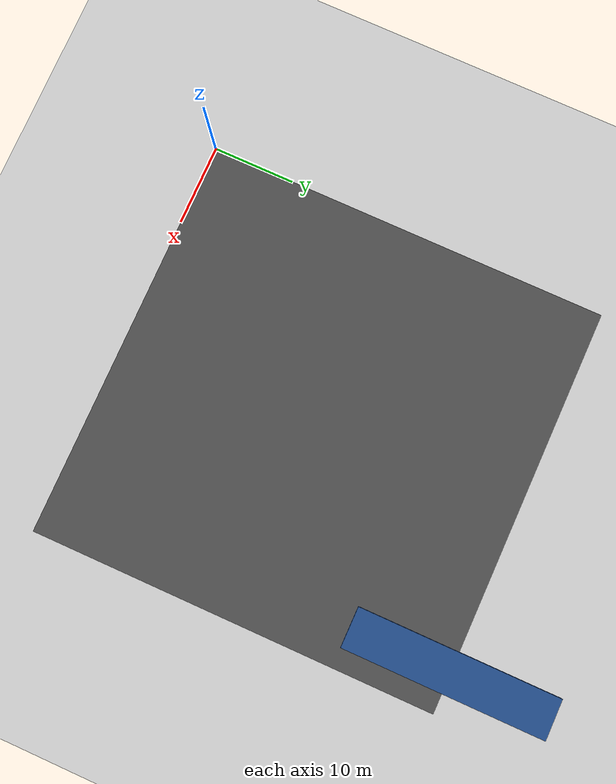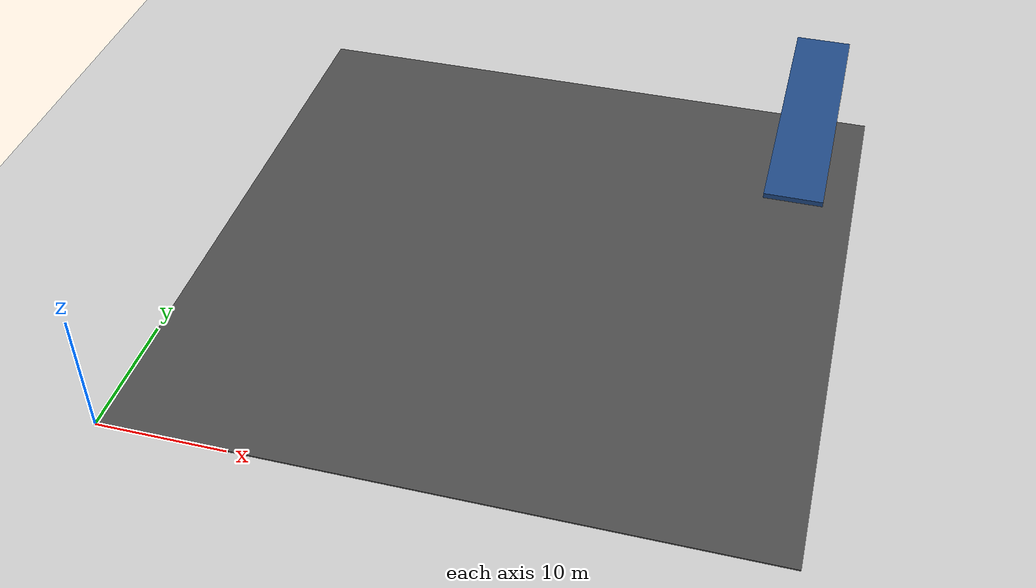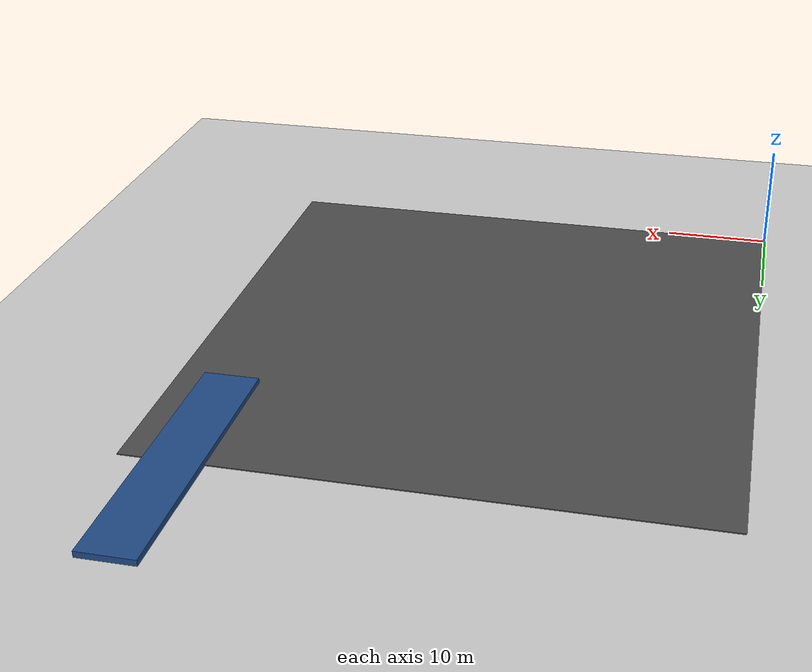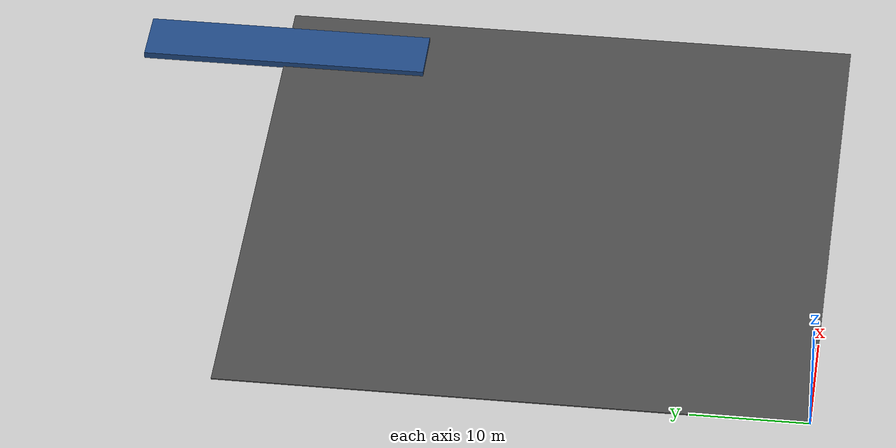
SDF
<sdf version="1.7">
 <world name="default">
  <model name="ground_plane">
   <static>1</static>
   <link name="link">
    <collision name="collision">
     <geometry><plane><normal>0 0 1</normal><size>100 100</size></plane></geometry>
     <surface>
      <contact><collide_bitmask>65535</collide_bitmask></contact>
      <friction><ode><mu>100</mu><mu2>50</mu2></ode></friction>
     </surface>
    </collision>
    <visual name="visual">
     <cast_shadows>0</cast_shadows>
     <geometry><plane><normal>0 0 1</normal><size>100 100</size></plane></geometry>
     <material>
      <script><uri>file://media/materials/scripts/gazebo.material</uri><name>Gazebo/Grey</name></script>
     </material>
    </visual>
   </link>
  </model>
  <model name="asphalt_plane">
   <link name="link">
    <inertial>
     <mass>1</mass>
     <inertia><ixx>1</ixx><ixy>0</ixy><ixz>0</ixz><iyy>1</iyy><iyz>0</iyz><izz>1</izz></inertia>
    </inertial>
    <visual name="visual">
     <cast_shadows>0</cast_shadows>
     <geometry><box><size>50 50 0.1</size></box></geometry>
     <material>
      <script>
       <uri>model://asphalt_plane/materials/scripts</uri>
       <uri>model://asphalt_plane/materials/textures</uri>
       <name>vrc/asphalt</name>
      </script>
      <shader type="pixel"><normal_map>__default__</normal_map></shader>
      <ambient>0.5 0.5 0.5 1</ambient>
      <diffuse>0.5 0.5 0.5 1</diffuse>
      <specular>0.2 0.2 0.2 1</specular>
      <emissive>0 0 0 1</emissive>
     </material>
    </visual>
    <collision name="collision">
     <geometry><box><size>50 50 0.1</size></box></geometry>
     <surface>
      <friction>
       <ode><mu>1</mu><mu2>1</mu2><fdir1>0 0 0</fdir1><slip1>0</slip1><slip2>0</slip2></ode>
       <torsional>
        <coefficient>1</coefficient>
        <patch_radius>0</patch_radius>
        <surface_radius>0</surface_radius>
        <use_patch_radius>1</use_patch_radius>
        <ode><slip>0</slip></ode>
       </torsional>
      </friction>
      <bounce><restitution_coefficient>0</restitution_coefficient><threshold>1e+06</threshold></bounce>
      <contact>
       <collide_without_contact>0</collide_without_contact>
       <collide_without_contact_bitmask>1</collide_without_contact_bitmask>
       <collide_bitmask>1</collide_bitmask>
       <ode>
        <soft_cfm>0</soft_cfm>
        <soft_erp>0.2</soft_erp>
        <kp>1e+13</kp>
        <kd>1</kd>
        <max_vel>0.01</max_vel>
        <min_depth>0</min_depth>
       </ode>
       <bullet>
        <split_impulse>1</split_impulse>
        <split_impulse_penetration_threshold>-0.01</split_impulse_penetration_threshold>
        <soft_cfm>0</soft_cfm>
        <soft_erp>0.2</soft_erp>
        <kp>1e+13</kp>
        <kd>1</kd>
       </bullet>
      </contact>
     </surface>
    </collision>
   </link>
   <static>1</static>
   <pose>25 25 0 0 -0 0</pose>
  </model>
  <model name="blue_box_25x5_clone_clone">
   <link name="link">
    <inertial>
     <mass>1</mass>
     <inertia>
      <ixx>0.166667</ixx>
      <ixy>0</ixy>
      <ixz>0</ixz>
      <iyy>0.166667</iyy>
      <iyz>0</iyz>
      <izz>0.166667</izz>
     </inertia>
    </inertial>
    <visual name="visual">
     <geometry><box><size>25 5 1</size></box></geometry>
     <material>
      <script><name>Gazebo/Grey</name><uri>file://media/materials/scripts/gazebo.material</uri></script>
      <shader type="pixel"><normal_map>__default__</normal_map></shader>
      <ambient>0.125 0.29 0.529 1</ambient>
      <diffuse>0.7 0.7 0.7 1</diffuse>
      <specular>0.01 0.01 0.01 1</specular>
      <emissive>0 0 0 1</emissive>
     </material>
    </visual>
    <collision name="collision">
     <geometry><box><size>25 5 1</size></box></geometry>
     <surface>
      <friction>
       <ode><mu>1</mu><mu2>1</mu2><fdir1>0 0 0</fdir1><slip1>0</slip1><slip2>0</slip2></ode>
       <torsional>
        <coefficient>1</coefficient>
        <patch_radius>0</patch_radius>
        <surface_radius>0</surface_radius>
        <use_patch_radius>1</use_patch_radius>
        <ode><slip>0</slip></ode>
       </torsional>
      </friction>
      <bounce><restitution_coefficient>0</restitution_coefficient><threshold>1e+06</threshold></bounce>
      <contact>
       <collide_without_contact>0</collide_without_contact>
       <collide_without_contact_bitmask>1</collide_without_contact_bitmask>
       <collide_bitmask>1</collide_bitmask>
       <ode>
        <soft_cfm>0</soft_cfm>
        <soft_erp>0.2</soft_erp>
        <kp>1e+13</kp>
        <kd>1</kd>
        <max_vel>0.01</max_vel>
        <min_depth>0</min_depth>
       </ode>
       <bullet>
        <split_impulse>1</split_impulse>
        <split_impulse_penetration_threshold>-0.01</split_impulse_penetration_threshold>
        <soft_cfm>0</soft_cfm>
        <soft_erp>0.2</soft_erp>
        <kp>1e+13</kp>
        <kd>1</kd>
       </bullet>
      </contact>
     </surface>
    </collision>
   </link>
   <static>1</static>
   <pose>45 50 0 0 -0 1.5708</pose>
  </model>
 </world>
</sdf>
